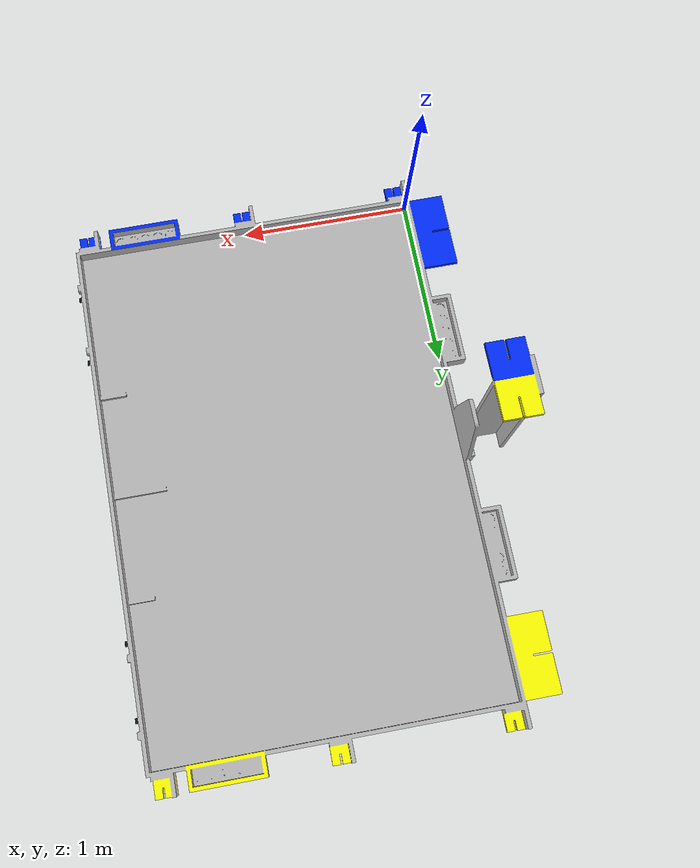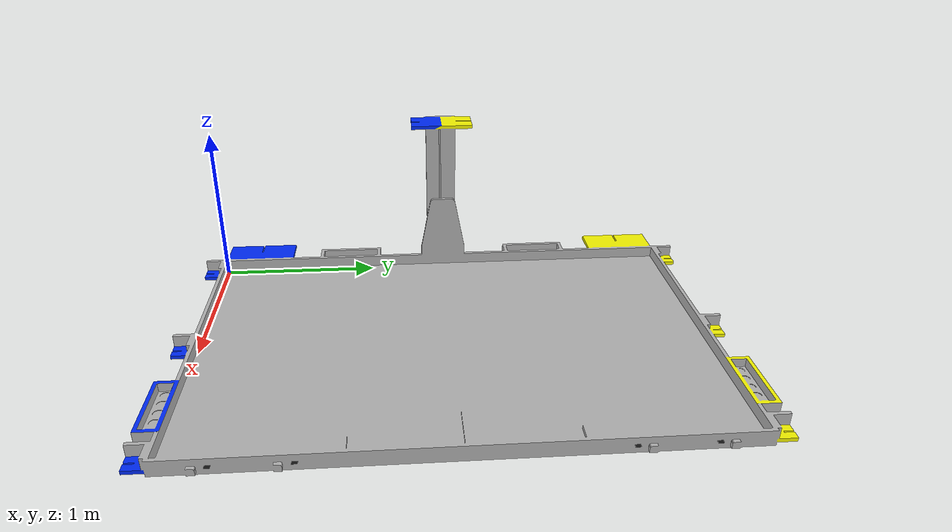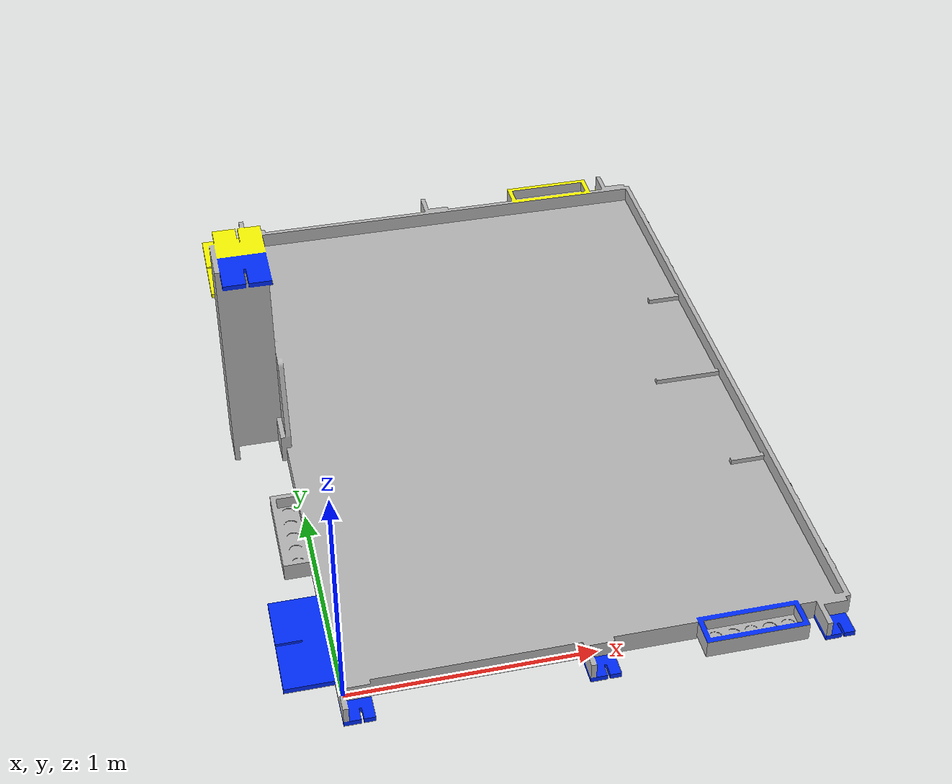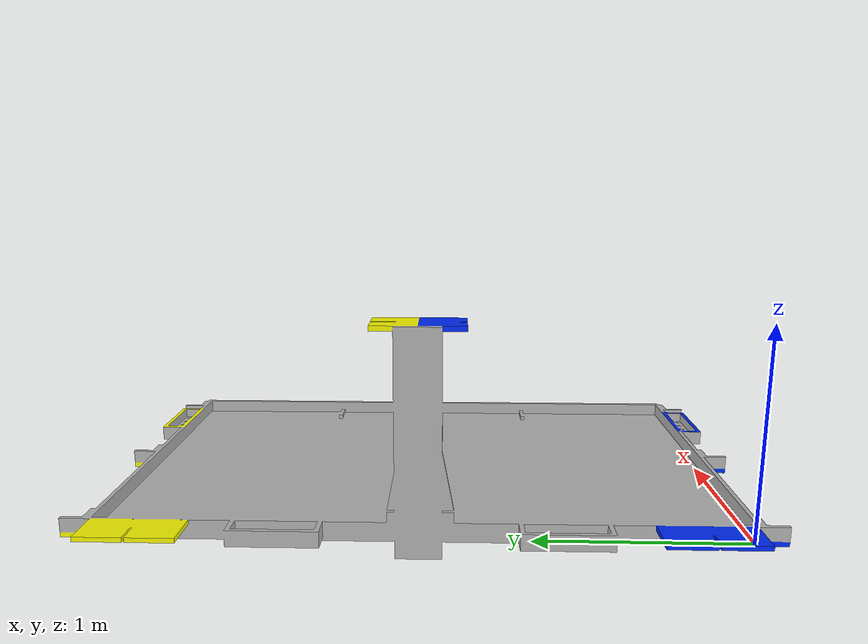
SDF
<sdf version="1.7">
 <world name="default">
  <gravity>0 0 -9.8</gravity>
  <magnetic_field>6e-06 2.3e-05 -4.2e-05</magnetic_field>
  <atmosphere type="adiabatic"/>
  <physics type="ode">
   <max_step_size>0.001</max_step_size>
   <real_time_factor>1</real_time_factor>
   <real_time_update_rate>1000</real_time_update_rate>
  </physics>
  <scene><ambient>0.4 0.4 0.4 1</ambient><background>0.7 0.7 0.7 1</background><shadows>1</shadows></scene>
  <spherical_coordinates>
   <surface_model>EARTH_WGS84</surface_model>
   <latitude_deg>0</latitude_deg>
   <longitude_deg>0</longitude_deg>
   <elevation>0</elevation>
   <heading_deg>0</heading_deg>
  </spherical_coordinates>
  <light name="user_directional_light_0" type="directional">
   <pose>-2.07951 -0.727383 1 0 -0 0</pose>
   <diffuse>0.5 0.5 0.5 1</diffuse>
   <specular>0.1 0.1 0.1 1</specular>
   <direction>0.1 0.1 -0.9</direction>
   <attenuation>
    <range>20</range>
    <constant>0.5</constant>
    <linear>0.01</linear>
    <quadratic>0.001</quadratic>
   </attenuation>
   <spot><inner_angle>0</inner_angle><outer_angle>0</outer_angle><falloff>0</falloff></spot>
  </light>
  <light name="user_point_light_0" type="point">
   <pose>-2.28248 -2.74758 1 0 -0 0</pose>
   <diffuse>0.5 0.5 0.5 1</diffuse>
   <specular>0.1 0.1 0.1 1</specular>
   <attenuation>
    <range>20</range>
    <constant>0.5</constant>
    <linear>0.01</linear>
    <quadratic>0.001</quadratic>
   </attenuation>
   <cast_shadows>0</cast_shadows>
   <direction>0 0 -1</direction>
   <spot><inner_angle>0</inner_angle><outer_angle>0</outer_angle><falloff>0</falloff></spot>
  </light>
  <model name="terrain2021">
   <static>1</static>
   <link name="link">
    <collision name="terrain2021">
     <geometry><mesh><uri>model://terrain2021/terrain2021.dae</uri><scale>1 1 1</scale></mesh></geometry>
    </collision>
    <visual name="rock">
     <geometry><mesh><uri>model://terrain2021/terrain2021.dae</uri><scale>1 1 1</scale></mesh></geometry>
    </visual>
   </link>
   <pose>-0.000442 -0.001772 0.000615 0 0 -1.5709</pose>
  </model>
 </world>
</sdf>
